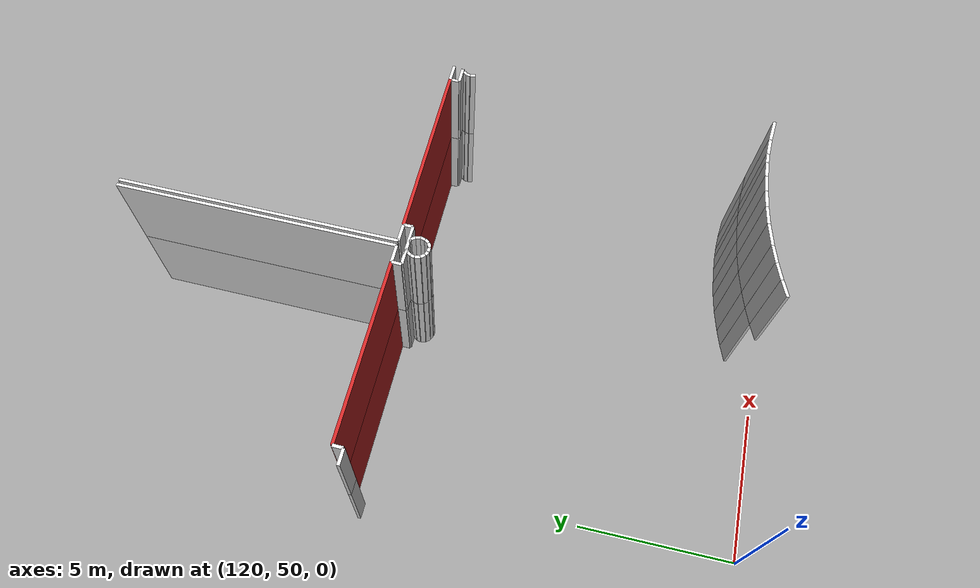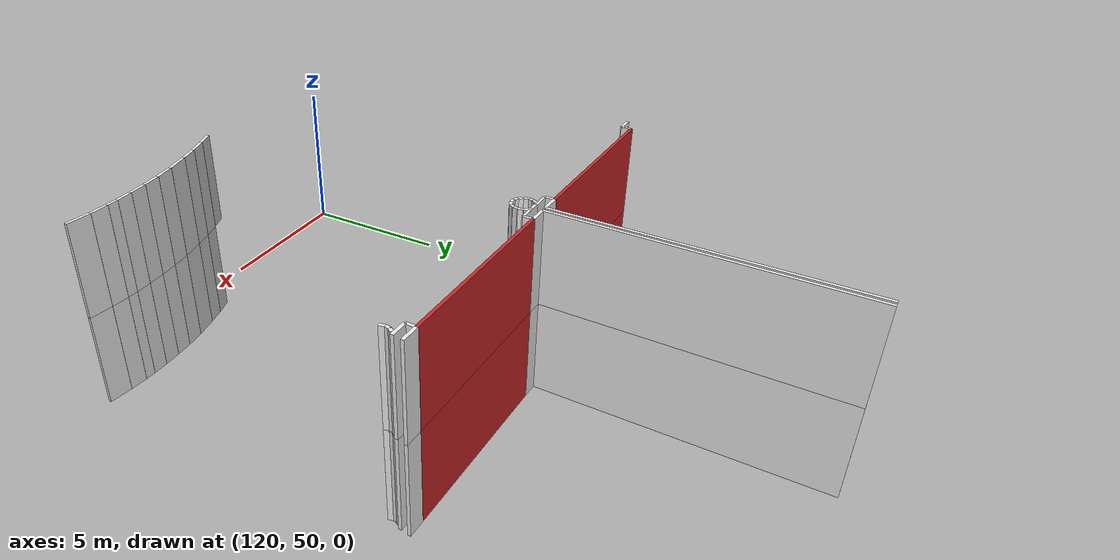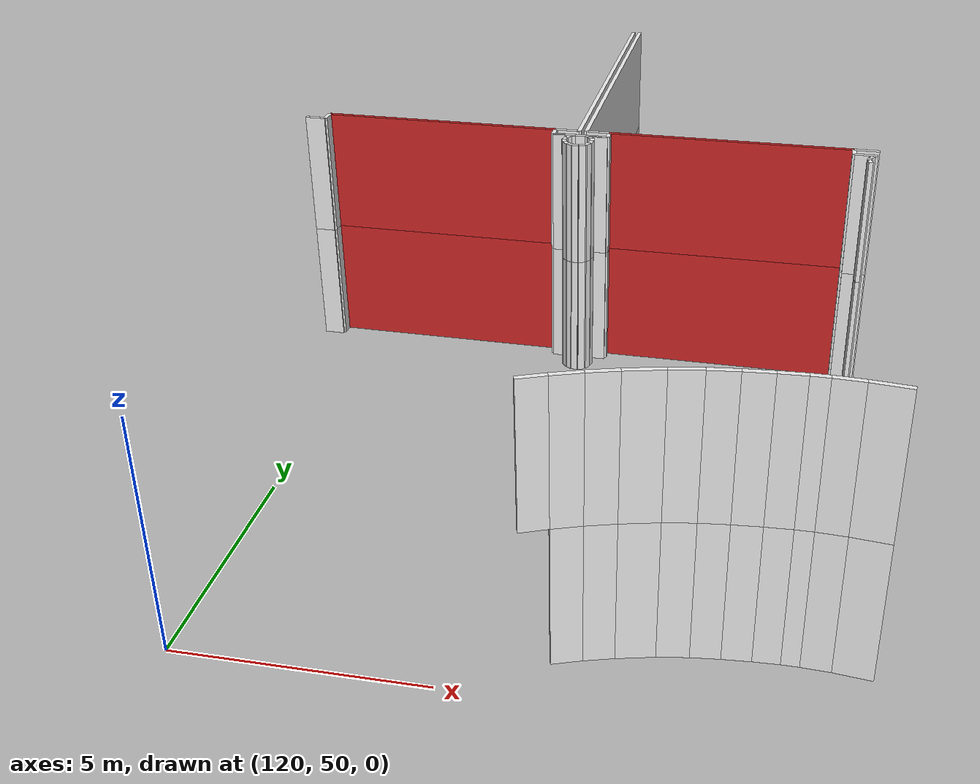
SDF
<sdf version="1.6">
 <world name="default">
  <model name="wall_122.0_62.2_1.5">
   <static>true</static>
   <pose>122.01499999998487 62.15500000002794 1.5 0 0 -0.015760516353173326</pose>
   <link name="link">
    <visual name="visual">
     <geometry><box><size>5.710709237940267 0.1 3</size></box></geometry>
     <material>
      <script><uri>file://media/materials/scripts/gazebo.material</uri><name>Gazebo/Red</name></script>
     </material>
    </visual>
    <collision name="collision"><geometry><box><size>5.710709237940267 0.1 3</size></box></geometry></collision>
   </link>
  </model>
  <model name="wall_129.0_62.0_1.5">
   <static>true</static>
   <pose>129.01999999998952 62.049999999813735 1.5 0 0 -0.014034166280132265</pose>
   <link name="link">
    <visual name="visual">
     <geometry><box><size>5.7005613758773475 0.1 3</size></box></geometry>
     <material>
      <script><uri>file://media/materials/scripts/gazebo.material</uri><name>Gazebo/Red</name></script>
     </material>
    </visual>
    <collision name="collision"><geometry><box><size>5.7005613758773475 0.1 3</size></box></geometry></collision>
   </link>
  </model>
  <model name="wall_122.0_62.2_4.5">
   <static>true</static>
   <pose>122.01499999998487 62.15500000002794 4.5 0 0 -0.015760516353173326</pose>
   <link name="link">
    <visual name="visual">
     <geometry><box><size>5.710709237940267 0.1 3</size></box></geometry>
     <material>
      <script><uri>file://media/materials/scripts/gazebo.material</uri><name>Gazebo/Red</name></script>
     </material>
    </visual>
    <collision name="collision"><geometry><box><size>5.710709237940267 0.1 3</size></box></geometry></collision>
   </link>
  </model>
  <model name="wall_129.0_62.0_4.5">
   <static>true</static>
   <pose>129.01999999998952 62.049999999813735 4.5 0 0 -0.014034166280132265</pose>
   <link name="link">
    <visual name="visual">
     <geometry><box><size>5.7005613758773475 0.1 3</size></box></geometry>
     <material>
      <script><uri>file://media/materials/scripts/gazebo.material</uri><name>Gazebo/Red</name></script>
     </material>
    </visual>
    <collision name="collision"><geometry><box><size>5.7005613758773475 0.1 3</size></box></geometry></collision>
   </link>
  </model>
  <model name="wall_125.5_66.5_1.5">
   <static>true</static>
   <pose>125.5 66.53500000014901 1.5 0 0 1.5572684034898048</pose>
   <link name="link">
    <visual name="visual">
     <geometry><box><size>8.870811687888628 0.1 3</size></box></geometry>
     <material>
      <script><uri>file://media/materials/scripts/gazebo.material</uri><name>Gazebo/White</name></script>
     </material>
    </visual>
    <collision name="collision"><geometry><box><size>8.870811687888628 0.1 3</size></box></geometry></collision>
   </link>
  </model>
  <model name="wall_125.2_62.1_1.5">
   <static>true</static>
   <pose>125.15499999999884 62.10499999998137 1.5 0 0 -0.017542059665172402</pose>
   <link name="link">
    <visual name="visual">
     <geometry><box><size>0.5700877125526321 0.1 3</size></box></geometry>
     <material>
      <script><uri>file://media/materials/scripts/gazebo.material</uri><name>Gazebo/White</name></script>
     </material>
    </visual>
    <collision name="collision"><geometry><box><size>0.5700877125526321 0.1 3</size></box></geometry></collision>
   </link>
  </model>
  <model name="wall_125.7_66.5_1.5">
   <static>true</static>
   <pose>125.67499999998836 66.53500000014901 1.5 0 0 -1.5854514218446472</pose>
   <link name="link">
    <visual name="visual">
     <geometry><box><size>8.87095259833936 0.1 3</size></box></geometry>
     <material>
      <script><uri>file://media/materials/scripts/gazebo.material</uri><name>Gazebo/White</name></script>
     </material>
    </visual>
    <collision name="collision"><geometry><box><size>8.87095259833936 0.1 3</size></box></geometry></collision>
   </link>
  </model>
  <model name="wall_125.9_62.1_1.5">
   <static>true</static>
   <pose>125.88999999998487 62.09499999997206 1.5 0 0 -0.017855245571888664</pose>
   <link name="link">
    <visual name="visual">
     <geometry><box><size>0.5600892785996132 0.1 3</size></box></geometry>
     <material>
      <script><uri>file://media/materials/scripts/gazebo.material</uri><name>Gazebo/White</name></script>
     </material>
    </visual>
    <collision name="collision"><geometry><box><size>0.5600892785996132 0.1 3</size></box></geometry></collision>
   </link>
  </model>
  <model name="wall_132.1_62.0_1.5">
   <static>true</static>
   <pose>132.14999999999418 62.00499999988824 1.5 0 0 -0.017855244740615724</pose>
   <link name="link">
    <visual name="visual">
     <geometry><box><size>0.5600892785912992 0.1 3</size></box></geometry>
     <material>
      <script><uri>file://media/materials/scripts/gazebo.material</uri><name>Gazebo/White</name></script>
     </material>
    </visual>
    <collision name="collision"><geometry><box><size>0.5600892785912992 0.1 3</size></box></geometry></collision>
   </link>
  </model>
  <model name="wall_132.2_51.6_1.5">
   <static>true</static>
   <pose>132.19500000000698 51.640000000130385 1.5 0 0 3.0324391905773007</pose>
   <link name="link">
    <visual name="visual">
     <geometry><box><size>0.7343704786990871 0.1 3</size></box></geometry>
     <material>
      <script><uri>file://media/materials/scripts/gazebo.material</uri><name>Gazebo/White</name></script>
     </material>
    </visual>
    <collision name="collision"><geometry><box><size>0.7343704786990871 0.1 3</size></box></geometry></collision>
   </link>
  </model>
  <model name="wall_131.6_51.7_1.5">
   <static>true</static>
   <pose>131.55000000001746 51.69500000006519 1.5 0 0 3.0880723854950856</pose>
   <link name="link">
    <visual name="visual">
     <geometry><box><size>0.5608029956991125 0.1 3</size></box></geometry>
     <material>
      <script><uri>file://media/materials/scripts/gazebo.material</uri><name>Gazebo/White</name></script>
     </material>
    </visual>
    <collision name="collision"><geometry><box><size>0.5608029956991125 0.1 3</size></box></geometry></collision>
   </link>
  </model>
  <model name="wall_131.1_51.7_1.5">
   <static>true</static>
   <pose>131.10000000000582 51.70999999996275 1.5 0 0 3.141592653589793</pose>
   <link name="link">
    <visual name="visual">
     <geometry><box><size>0.34000000002561137 0.1 3</size></box></geometry>
     <material>
      <script><uri>file://media/materials/scripts/gazebo.material</uri><name>Gazebo/White</name></script>
     </material>
    </visual>
    <collision name="collision"><geometry><box><size>0.34000000002561137 0.1 3</size></box></geometry></collision>
   </link>
  </model>
  <model name="wall_130.7_51.7_1.5">
   <static>true</static>
   <pose>130.67499999998836 51.699999999953434 1.5 0 0 -3.102397051626987</pose>
   <link name="link">
    <visual name="visual">
     <geometry><box><size>0.5103920062170298 0.1 3</size></box></geometry>
     <material>
      <script><uri>file://media/materials/scripts/gazebo.material</uri><name>Gazebo/White</name></script>
     </material>
    </visual>
    <collision name="collision"><geometry><box><size>0.5103920062170298 0.1 3</size></box></geometry></collision>
   </link>
  </model>
  <model name="wall_130.1_51.7_1.5">
   <static>true</static>
   <pose>130.14499999998952 51.669999999925494 1.5 0 0 -3.068993199790391</pose>
   <link name="link">
    <visual name="visual">
     <geometry><box><size>0.5514526271495808 0.1 3</size></box></geometry>
     <material>
      <script><uri>file://media/materials/scripts/gazebo.material</uri><name>Gazebo/White</name></script>
     </material>
    </visual>
    <collision name="collision"><geometry><box><size>0.5514526271495808 0.1 3</size></box></geometry></collision>
   </link>
  </model>
  <model name="wall_129.6_51.6_1.5">
   <static>true</static>
   <pose>129.5899999999965 51.61999999987893 1.5 0 0 -3.0348569808415653</pose>
   <link name="link">
    <visual name="visual">
     <geometry><box><size>0.5632051136167868 0.1 3</size></box></geometry>
     <material>
      <script><uri>file://media/materials/scripts/gazebo.material</uri><name>Gazebo/White</name></script>
     </material>
    </visual>
    <collision name="collision"><geometry><box><size>0.5632051136167868 0.1 3</size></box></geometry></collision>
   </link>
  </model>
  <model name="wall_129.0_51.5_1.5">
   <static>true</static>
   <pose>129.0100000000093 51.54000000003725 1.5 0 0 -2.9764439767729747</pose>
   <link name="link">
    <visual name="visual">
     <geometry><box><size>0.6082762529456124 0.1 3</size></box></geometry>
     <material>
      <script><uri>file://media/materials/scripts/gazebo.material</uri><name>Gazebo/White</name></script>
     </material>
    </visual>
    <collision name="collision"><geometry><box><size>0.6082762529456124 0.1 3</size></box></geometry></collision>
   </link>
  </model>
  <model name="wall_128.4_51.4_1.5">
   <static>true</static>
   <pose>128.35000000000582 51.40500000002794 1.5 0 0 -2.909727992235222</pose>
   <link name="link">
    <visual name="visual">
     <geometry><box><size>0.7397972696466099 0.1 3</size></box></geometry>
     <material>
      <script><uri>file://media/materials/scripts/gazebo.material</uri><name>Gazebo/White</name></script>
     </material>
    </visual>
    <collision name="collision"><geometry><box><size>0.7397972696466099 0.1 3</size></box></geometry></collision>
   </link>
  </model>
  <model name="wall_127.7_51.2_1.5">
   <static>true</static>
   <pose>127.70999999999185 51.23999999999069 1.5 0 0 -2.863292995106354</pose>
   <link name="link">
    <visual name="visual">
     <geometry><box><size>0.5824087910532124 0.1 3</size></box></geometry>
     <material>
      <script><uri>file://media/materials/scripts/gazebo.material</uri><name>Gazebo/White</name></script>
     </material>
    </visual>
    <collision name="collision"><geometry><box><size>0.5824087910532124 0.1 3</size></box></geometry></collision>
   </link>
  </model>
  <model name="wall_127.2_51.1_1.5">
   <static>true</static>
   <pose>127.15499999999884 51.06500000017695 1.5 0 0 -2.8089729621001154</pose>
   <link name="link">
    <visual name="visual">
     <geometry><box><size>0.581893461009797 0.1 3</size></box></geometry>
     <material>
      <script><uri>file://media/materials/scripts/gazebo.material</uri><name>Gazebo/White</name></script>
     </material>
    </visual>
    <collision name="collision"><geometry><box><size>0.581893461009797 0.1 3</size></box></geometry></collision>
   </link>
  </model>
  <model name="wall_118.9_61.9_1.5">
   <static>true</static>
   <pose>118.90499999999884 61.88500000000931 1.5 0 0 -0.020405331178467944</pose>
   <link name="link">
    <visual name="visual">
     <geometry><box><size>0.4901020302475388 0.1 3</size></box></geometry>
     <material>
      <script><uri>file://media/materials/scripts/gazebo.material</uri><name>Gazebo/White</name></script>
     </material>
    </visual>
    <collision name="collision"><geometry><box><size>0.4901020302475388 0.1 3</size></box></geometry></collision>
   </link>
  </model>
  <model name="wall_119.2_62.0_1.5">
   <static>true</static>
   <pose>119.15499999999884 62.04000000003725 1.5 0 0 1.5395564935463497</pose>
   <link name="link">
    <visual name="visual">
     <geometry><box><size>0.320156212167993 0.1 3</size></box></geometry>
     <material>
      <script><uri>file://media/materials/scripts/gazebo.material</uri><name>Gazebo/White</name></script>
     </material>
    </visual>
    <collision name="collision"><geometry><box><size>0.320156212167993 0.1 3</size></box></geometry></collision>
   </link>
  </model>
  <model name="wall_124.9_62.0_1.5">
   <static>true</static>
   <pose>124.86499999999069 61.954999999841675 1.5 0 0 -1.6030432092543534</pose>
   <link name="link">
    <visual name="visual">
     <geometry><box><size>0.310161248441567 0.1 3</size></box></geometry>
     <material>
      <script><uri>file://media/materials/scripts/gazebo.material</uri><name>Gazebo/White</name></script>
     </material>
    </visual>
    <collision name="collision"><geometry><box><size>0.310161248441567 0.1 3</size></box></geometry></collision>
   </link>
  </model>
  <model name="wall_125.1_61.8_1.5">
   <static>true</static>
   <pose>125.13000000000466 61.799999999813735 1.5 0 0 0.0</pose>
   <link name="link">
    <visual name="visual">
     <geometry><box><size>0.5400000000372529 0.1 3</size></box></geometry>
     <material>
      <script><uri>file://media/materials/scripts/gazebo.material</uri><name>Gazebo/White</name></script>
     </material>
    </visual>
    <collision name="collision"><geometry><box><size>0.5400000000372529 0.1 3</size></box></geometry></collision>
   </link>
  </model>
  <model name="wall_125.3_61.8_1.5">
   <static>true</static>
   <pose>125.34500000000116 61.764999999897555 1.5 0 0 -2.5748634373331596</pose>
   <link name="link">
    <visual name="visual">
     <geometry><box><size>0.13038404805137394 0.1 3</size></box></geometry>
     <material>
      <script><uri>file://media/materials/scripts/gazebo.material</uri><name>Gazebo/White</name></script>
     </material>
    </visual>
    <collision name="collision"><geometry><box><size>0.13038404805137394 0.1 3</size></box></geometry></collision>
   </link>
  </model>
  <model name="wall_125.2_61.7_1.5">
   <static>true</static>
   <pose>125.25 61.675000000046566 1.5 0 0 -2.1995926135249655</pose>
   <link name="link">
    <visual name="visual">
     <geometry><box><size>0.13601470495725726 0.1 3</size></box></geometry>
     <material>
      <script><uri>file://media/materials/scripts/gazebo.material</uri><name>Gazebo/White</name></script>
     </material>
    </visual>
    <collision name="collision"><geometry><box><size>0.13601470495725726 0.1 3</size></box></geometry></collision>
   </link>
  </model>
  <model name="wall_125.2_61.6_1.5">
   <static>true</static>
   <pose>125.19500000000698 61.55500000016764 1.5 0 0 -1.7975951752411936</pose>
   <link name="link">
    <visual name="visual">
     <geometry><box><size>0.13341664053864913 0.1 3</size></box></geometry>
     <material>
      <script><uri>file://media/materials/scripts/gazebo.material</uri><name>Gazebo/White</name></script>
     </material>
    </visual>
    <collision name="collision"><geometry><box><size>0.13341664053864913 0.1 3</size></box></geometry></collision>
   </link>
  </model>
  <model name="wall_125.2_61.4_1.5">
   <static>true</static>
   <pose>125.19999999998254 61.41000000014901 1.5 0 0 -1.3258176640104304</pose>
   <link name="link">
    <visual name="visual">
     <geometry><box><size>0.16492422516418664 0.1 3</size></box></geometry>
     <material>
      <script><uri>file://media/materials/scripts/gazebo.material</uri><name>Gazebo/White</name></script>
     </material>
    </visual>
    <collision name="collision"><geometry><box><size>0.16492422516418664 0.1 3</size></box></geometry></collision>
   </link>
  </model>
  <model name="wall_125.3_61.3_1.5">
   <static>true</static>
   <pose>125.26999999998952 61.27000000001863 1.5 0 0 -0.8760580508844606</pose>
   <link name="link">
    <visual name="visual">
     <geometry><box><size>0.15620499362634668 0.1 3</size></box></geometry>
     <material>
      <script><uri>file://media/materials/scripts/gazebo.material</uri><name>Gazebo/White</name></script>
     </material>
    </visual>
    <collision name="collision"><geometry><box><size>0.15620499362634668 0.1 3</size></box></geometry></collision>
   </link>
  </model>
  <model name="wall_125.4_61.2_1.5">
   <static>true</static>
   <pose>125.38000000000466 61.17999999993481 1.5 0 0 -0.4636476093888572</pose>
   <link name="link">
    <visual name="visual">
     <geometry><box><size>0.1341640786708124 0.1 3</size></box></geometry>
     <material>
      <script><uri>file://media/materials/scripts/gazebo.material</uri><name>Gazebo/White</name></script>
     </material>
    </visual>
    <collision name="collision"><geometry><box><size>0.1341640786708124 0.1 3</size></box></geometry></collision>
   </link>
  </model>
  <model name="wall_125.5_61.1_1.5">
   <static>true</static>
   <pose>125.51500000001397 61.14500000001863 1.5 0 0 -0.06656816228199888</pose>
   <link name="link">
    <visual name="visual">
     <geometry><box><size>0.15033296379209243 0.1 3</size></box></geometry>
     <material>
      <script><uri>file://media/materials/scripts/gazebo.material</uri><name>Gazebo/White</name></script>
     </material>
    </visual>
    <collision name="collision"><geometry><box><size>0.15033296379209243 0.1 3</size></box></geometry></collision>
   </link>
  </model>
  <model name="wall_125.7_61.2_1.5">
   <static>true</static>
   <pose>125.66500000000815 61.170000000158325 1.5 0 0 0.380506377513797</pose>
   <link name="link">
    <visual name="visual">
     <geometry><box><size>0.16155494420236152 0.1 3</size></box></geometry>
     <material>
      <script><uri>file://media/materials/scripts/gazebo.material</uri><name>Gazebo/White</name></script>
     </material>
    </visual>
    <collision name="collision"><geometry><box><size>0.16155494420236152 0.1 3</size></box></geometry></collision>
   </link>
  </model>
  <model name="wall_125.8_61.3_1.5">
   <static>true</static>
   <pose>125.77999999999884 61.265000000130385 1.5 0 0 1.019141343791695</pose>
   <link name="link">
    <visual name="visual">
     <geometry><box><size>0.15264337513809906 0.1 3</size></box></geometry>
     <material>
      <script><uri>file://media/materials/scripts/gazebo.material</uri><name>Gazebo/White</name></script>
     </material>
    </visual>
    <collision name="collision"><geometry><box><size>0.15264337513809906 0.1 3</size></box></geometry></collision>
   </link>
  </model>
  <model name="wall_125.8_61.4_1.5">
   <static>true</static>
   <pose>125.83999999999651 61.40500000002794 1.5 0 0 1.310193935023403</pose>
   <link name="link">
    <visual name="visual">
     <geometry><box><size>0.15524174686721334 0.1 3</size></box></geometry>
     <material>
      <script><uri>file://media/materials/scripts/gazebo.material</uri><name>Gazebo/White</name></script>
     </material>
    </visual>
    <collision name="collision"><geometry><box><size>0.15524174686721334 0.1 3</size></box></geometry></collision>
   </link>
  </model>
  <model name="wall_125.8_61.6_1.5">
   <static>true</static>
   <pose>125.83999999999651 61.55499999993481 1.5 0 0 1.8313987185663902</pose>
   <link name="link">
    <visual name="visual">
     <geometry><box><size>0.15524174686721334 0.1 3</size></box></geometry>
     <material>
      <script><uri>file://media/materials/scripts/gazebo.material</uri><name>Gazebo/White</name></script>
     </material>
    </visual>
    <collision name="collision"><geometry><box><size>0.15524174686721334 0.1 3</size></box></geometry></collision>
   </link>
  </model>
  <model name="wall_125.8_61.7_1.5">
   <static>true</static>
   <pose>125.77499999999418 61.69499999983236 1.5 0 0 2.176340990935377</pose>
   <link name="link">
    <visual name="visual">
     <geometry><box><size>0.15811388293111006 0.1 3</size></box></geometry>
     <material>
      <script><uri>file://media/materials/scripts/gazebo.material</uri><name>Gazebo/White</name></script>
     </material>
    </visual>
    <collision name="collision"><geometry><box><size>0.15811388293111006 0.1 3</size></box></geometry></collision>
   </link>
  </model>
  <model name="wall_125.7_61.8_1.5">
   <static>true</static>
   <pose>125.69000000000233 61.77499999990687 1.5 0 0 2.782821980289233</pose>
   <link name="link">
    <visual name="visual">
     <geometry><box><size>0.08544003750549678 0.1 3</size></box></geometry>
     <material>
      <script><uri>file://media/materials/scripts/gazebo.material</uri><name>Gazebo/White</name></script>
     </material>
    </visual>
    <collision name="collision"><geometry><box><size>0.08544003750549678 0.1 3</size></box></geometry></collision>
   </link>
  </model>
  <model name="wall_125.9_61.8_1.5">
   <static>true</static>
   <pose>125.91000000000349 61.79000000003725 1.5 0 0 0.0</pose>
   <link name="link">
    <visual name="visual">
     <geometry><box><size>0.5199999999604188 0.1 3</size></box></geometry>
     <material>
      <script><uri>file://media/materials/scripts/gazebo.material</uri><name>Gazebo/White</name></script>
     </material>
    </visual>
    <collision name="collision"><geometry><box><size>0.5199999999604188 0.1 3</size></box></geometry></collision>
   </link>
  </model>
  <model name="wall_126.2_61.9_1.5">
   <static>true</static>
   <pose>126.1699999999837 61.93999999994412 1.5 0 0 1.5707963267948966</pose>
   <link name="link">
    <visual name="visual">
     <geometry><box><size>0.2999999998137355 0.1 3</size></box></geometry>
     <material>
      <script><uri>file://media/materials/scripts/gazebo.material</uri><name>Gazebo/White</name></script>
     </material>
    </visual>
    <collision name="collision"><geometry><box><size>0.2999999998137355 0.1 3</size></box></geometry></collision>
   </link>
  </model>
  <model name="wall_131.9_61.9_1.5">
   <static>true</static>
   <pose>131.8649999999907 61.859999999869615 1.5 0 0 -1.6041173227248264</pose>
   <link name="link">
    <visual name="visual">
     <geometry><box><size>0.30016662021022184 0.1 3</size></box></geometry>
     <material>
      <script><uri>file://media/materials/scripts/gazebo.material</uri><name>Gazebo/White</name></script>
     </material>
    </visual>
    <collision name="collision"><geometry><box><size>0.30016662021022184 0.1 3</size></box></geometry></collision>
   </link>
  </model>
  <model name="wall_132.1_61.7_1.5">
   <static>true</static>
   <pose>132.11999999999534 61.705000000074506 1.5 0 0 -0.01922839866933633</pose>
   <link name="link">
    <visual name="visual">
     <geometry><box><size>0.5200961449721592 0.1 3</size></box></geometry>
     <material>
      <script><uri>file://media/materials/scripts/gazebo.material</uri><name>Gazebo/White</name></script>
     </material>
    </visual>
    <collision name="collision"><geometry><box><size>0.5200961449721592 0.1 3</size></box></geometry></collision>
   </link>
  </model>
  <model name="wall_132.2_61.6_1.5">
   <static>true</static>
   <pose>132.2400000000198 61.58499999996275 1.5 0 0 -2.199592611857395</pose>
   <link name="link">
    <visual name="visual">
     <geometry><box><size>0.13601470536809043 0.1 3</size></box></geometry>
     <material>
      <script><uri>file://media/materials/scripts/gazebo.material</uri><name>Gazebo/White</name></script>
     </material>
    </visual>
    <collision name="collision"><geometry><box><size>0.13601470536809043 0.1 3</size></box></geometry></collision>
   </link>
  </model>
  <model name="wall_132.2_61.5_1.5">
   <static>true</static>
   <pose>132.18499999999767 61.46499999985099 1.5 0 0 -1.7975951752411936</pose>
   <link name="link">
    <visual name="visual">
     <geometry><box><size>0.13341664053864913 0.1 3</size></box></geometry>
     <material>
      <script><uri>file://media/materials/scripts/gazebo.material</uri><name>Gazebo/White</name></script>
     </material>
    </visual>
    <collision name="collision"><geometry><box><size>0.13341664053864913 0.1 3</size></box></geometry></collision>
   </link>
  </model>
  <model name="wall_132.2_61.3_1.5">
   <static>true</static>
   <pose>132.19000000000233 61.32000000006519 1.5 0 0 -1.3258176629832366</pose>
   <link name="link">
    <visual name="visual">
     <geometry><box><size>0.16492422472654628 0.1 3</size></box></geometry>
     <material>
      <script><uri>file://media/materials/scripts/gazebo.material</uri><name>Gazebo/White</name></script>
     </material>
    </visual>
    <collision name="collision"><geometry><box><size>0.16492422472654628 0.1 3</size></box></geometry></collision>
   </link>
  </model>
  <model name="wall_125.5_61.8_1.5">
   <static>true</static>
   <pose>125.51499999998487 61.794999999925494 1.5 0 0 -0.007633439346892596</pose>
   <link name="link">
    <visual name="visual">
     <geometry><box><size>1.3100381673788857 0.1 3</size></box></geometry>
     <material>
      <script><uri>file://media/materials/scripts/gazebo.material</uri><name>Gazebo/White</name></script>
     </material>
    </visual>
    <collision name="collision"><geometry><box><size>1.3100381673788857 0.1 3</size></box></geometry></collision>
   </link>
  </model>
  <model name="wall_125.5_66.5_4.5">
   <static>true</static>
   <pose>125.5 66.53500000014901 4.5 0 0 1.5572684034898048</pose>
   <link name="link">
    <visual name="visual">
     <geometry><box><size>8.870811687888628 0.1 3</size></box></geometry>
     <material>
      <script><uri>file://media/materials/scripts/gazebo.material</uri><name>Gazebo/White</name></script>
     </material>
    </visual>
    <collision name="collision"><geometry><box><size>8.870811687888628 0.1 3</size></box></geometry></collision>
   </link>
  </model>
  <model name="wall_125.2_62.1_4.5">
   <static>true</static>
   <pose>125.15499999999884 62.10499999998137 4.5 0 0 -0.017542059665172402</pose>
   <link name="link">
    <visual name="visual">
     <geometry><box><size>0.5700877125526321 0.1 3</size></box></geometry>
     <material>
      <script><uri>file://media/materials/scripts/gazebo.material</uri><name>Gazebo/White</name></script>
     </material>
    </visual>
    <collision name="collision"><geometry><box><size>0.5700877125526321 0.1 3</size></box></geometry></collision>
   </link>
  </model>
  <model name="wall_125.7_66.5_4.5">
   <static>true</static>
   <pose>125.67499999998836 66.53500000014901 4.5 0 0 -1.5854514218446472</pose>
   <link name="link">
    <visual name="visual">
     <geometry><box><size>8.87095259833936 0.1 3</size></box></geometry>
     <material>
      <script><uri>file://media/materials/scripts/gazebo.material</uri><name>Gazebo/White</name></script>
     </material>
    </visual>
    <collision name="collision"><geometry><box><size>8.87095259833936 0.1 3</size></box></geometry></collision>
   </link>
  </model>
  <model name="wall_125.9_62.1_4.5">
   <static>true</static>
   <pose>125.88999999998487 62.09499999997206 4.5 0 0 -0.017855245571888664</pose>
   <link name="link">
    <visual name="visual">
     <geometry><box><size>0.5600892785996132 0.1 3</size></box></geometry>
     <material>
      <script><uri>file://media/materials/scripts/gazebo.material</uri><name>Gazebo/White</name></script>
     </material>
    </visual>
    <collision name="collision"><geometry><box><size>0.5600892785996132 0.1 3</size></box></geometry></collision>
   </link>
  </model>
  <model name="wall_132.1_62.0_4.5">
   <static>true</static>
   <pose>132.14999999999418 62.00499999988824 4.5 0 0 -0.017855244740615724</pose>
   <link name="link">
    <visual name="visual">
     <geometry><box><size>0.5600892785912992 0.1 3</size></box></geometry>
     <material>
      <script><uri>file://media/materials/scripts/gazebo.material</uri><name>Gazebo/White</name></script>
     </material>
    </visual>
    <collision name="collision"><geometry><box><size>0.5600892785912992 0.1 3</size></box></geometry></collision>
   </link>
  </model>
  <model name="wall_132.2_51.6_4.5">
   <static>true</static>
   <pose>132.19500000000698 51.640000000130385 4.5 0 0 3.0324391905773007</pose>
   <link name="link">
    <visual name="visual">
     <geometry><box><size>0.7343704786990871 0.1 3</size></box></geometry>
     <material>
      <script><uri>file://media/materials/scripts/gazebo.material</uri><name>Gazebo/White</name></script>
     </material>
    </visual>
    <collision name="collision"><geometry><box><size>0.7343704786990871 0.1 3</size></box></geometry></collision>
   </link>
  </model>
  <model name="wall_131.6_51.7_4.5">
   <static>true</static>
   <pose>131.55000000001746 51.69500000006519 4.5 0 0 3.0880723854950856</pose>
   <link name="link">
    <visual name="visual">
     <geometry><box><size>0.5608029956991125 0.1 3</size></box></geometry>
     <material>
      <script><uri>file://media/materials/scripts/gazebo.material</uri><name>Gazebo/White</name></script>
     </material>
    </visual>
    <collision name="collision"><geometry><box><size>0.5608029956991125 0.1 3</size></box></geometry></collision>
   </link>
  </model>
  <model name="wall_131.1_51.7_4.5">
   <static>true</static>
   <pose>131.10000000000582 51.70999999996275 4.5 0 0 3.141592653589793</pose>
   <link name="link">
    <visual name="visual">
     <geometry><box><size>0.34000000002561137 0.1 3</size></box></geometry>
     <material>
      <script><uri>file://media/materials/scripts/gazebo.material</uri><name>Gazebo/White</name></script>
     </material>
    </visual>
    <collision name="collision"><geometry><box><size>0.34000000002561137 0.1 3</size></box></geometry></collision>
   </link>
  </model>
  <model name="wall_130.7_51.7_4.5">
   <static>true</static>
   <pose>130.67499999998836 51.699999999953434 4.5 0 0 -3.102397051626987</pose>
   <link name="link">
    <visual name="visual">
     <geometry><box><size>0.5103920062170298 0.1 3</size></box></geometry>
     <material>
      <script><uri>file://media/materials/scripts/gazebo.material</uri><name>Gazebo/White</name></script>
     </material>
    </visual>
    <collision name="collision"><geometry><box><size>0.5103920062170298 0.1 3</size></box></geometry></collision>
   </link>
  </model>
  <model name="wall_130.1_51.7_4.5">
   <static>true</static>
   <pose>130.14499999998952 51.669999999925494 4.5 0 0 -3.068993199790391</pose>
   <link name="link">
    <visual name="visual">
     <geometry><box><size>0.5514526271495808 0.1 3</size></box></geometry>
     <material>
      <script><uri>file://media/materials/scripts/gazebo.material</uri><name>Gazebo/White</name></script>
     </material>
    </visual>
    <collision name="collision"><geometry><box><size>0.5514526271495808 0.1 3</size></box></geometry></collision>
   </link>
  </model>
  <model name="wall_129.6_51.6_4.5">
   <static>true</static>
   <pose>129.5899999999965 51.61999999987893 4.5 0 0 -3.0348569808415653</pose>
   <link name="link">
    <visual name="visual">
     <geometry><box><size>0.5632051136167868 0.1 3</size></box></geometry>
     <material>
      <script><uri>file://media/materials/scripts/gazebo.material</uri><name>Gazebo/White</name></script>
     </material>
    </visual>
    <collision name="collision"><geometry><box><size>0.5632051136167868 0.1 3</size></box></geometry></collision>
   </link>
  </model>
  <model name="wall_129.0_51.5_4.5">
   <static>true</static>
   <pose>129.0100000000093 51.54000000003725 4.5 0 0 -2.9764439767729747</pose>
   <link name="link">
    <visual name="visual">
     <geometry><box><size>0.6082762529456124 0.1 3</size></box></geometry>
     <material>
      <script><uri>file://media/materials/scripts/gazebo.material</uri><name>Gazebo/White</name></script>
     </material>
    </visual>
    <collision name="collision"><geometry><box><size>0.6082762529456124 0.1 3</size></box></geometry></collision>
   </link>
  </model>
  <model name="wall_128.4_51.4_4.5">
   <static>true</static>
   <pose>128.35000000000582 51.40500000002794 4.5 0 0 -2.909727992235222</pose>
   <link name="link">
    <visual name="visual">
     <geometry><box><size>0.7397972696466099 0.1 3</size></box></geometry>
     <material>
      <script><uri>file://media/materials/scripts/gazebo.material</uri><name>Gazebo/White</name></script>
     </material>
    </visual>
    <collision name="collision"><geometry><box><size>0.7397972696466099 0.1 3</size></box></geometry></collision>
   </link>
  </model>
  <model name="wall_127.7_51.2_4.5">
   <static>true</static>
   <pose>127.70999999999185 51.23999999999069 4.5 0 0 -2.863292995106354</pose>
   <link name="link">
    <visual name="visual">
     <geometry><box><size>0.5824087910532124 0.1 3</size></box></geometry>
     <material>
      <script><uri>file://media/materials/scripts/gazebo.material</uri><name>Gazebo/White</name></script>
     </material>
    </visual>
    <collision name="collision"><geometry><box><size>0.5824087910532124 0.1 3</size></box></geometry></collision>
   </link>
  </model>
  <model name="wall_127.2_51.1_4.5">
   <static>true</static>
   <pose>127.15499999999884 51.06500000017695 4.5 0 0 -2.8089729621001154</pose>
   <link name="link">
    <visual name="visual">
     <geometry><box><size>0.581893461009797 0.1 3</size></box></geometry>
     <material>
      <script><uri>file://media/materials/scripts/gazebo.material</uri><name>Gazebo/White</name></script>
     </material>
    </visual>
    <collision name="collision"><geometry><box><size>0.581893461009797 0.1 3</size></box></geometry></collision>
   </link>
  </model>
  <model name="wall_126.6_50.9_4.5">
   <static>true</static>
   <pose>126.625 50.87000000011176 4.5 0 0 -2.7678658333139023</pose>
   <link name="link">
    <visual name="visual">
     <geometry><box><size>0.5478138370687667 0.1 3</size></box></geometry>
     <material>
      <script><uri>file://media/materials/scripts/gazebo.material</uri><name>Gazebo/White</name></script>
     </material>
    </visual>
    <collision name="collision"><geometry><box><size>0.5478138370687667 0.1 3</size></box></geometry></collision>
   </link>
  </model>
  <model name="wall_118.9_61.9_4.5">
   <static>true</static>
   <pose>118.90499999999884 61.88500000000931 4.5 0 0 -0.020405331178467944</pose>
   <link name="link">
    <visual name="visual">
     <geometry><box><size>0.4901020302475388 0.1 3</size></box></geometry>
     <material>
      <script><uri>file://media/materials/scripts/gazebo.material</uri><name>Gazebo/White</name></script>
     </material>
    </visual>
    <collision name="collision"><geometry><box><size>0.4901020302475388 0.1 3</size></box></geometry></collision>
   </link>
  </model>
  <model name="wall_119.2_62.0_4.5">
   <static>true</static>
   <pose>119.15499999999884 62.04000000003725 4.5 0 0 1.5395564935463497</pose>
   <link name="link">
    <visual name="visual">
     <geometry><box><size>0.320156212167993 0.1 3</size></box></geometry>
     <material>
      <script><uri>file://media/materials/scripts/gazebo.material</uri><name>Gazebo/White</name></script>
     </material>
    </visual>
    <collision name="collision"><geometry><box><size>0.320156212167993 0.1 3</size></box></geometry></collision>
   </link>
  </model>
  <model name="wall_124.9_62.0_4.5">
   <static>true</static>
   <pose>124.86499999999069 61.954999999841675 4.5 0 0 -1.6030432092543534</pose>
   <link name="link">
    <visual name="visual">
     <geometry><box><size>0.310161248441567 0.1 3</size></box></geometry>
     <material>
      <script><uri>file://media/materials/scripts/gazebo.material</uri><name>Gazebo/White</name></script>
     </material>
    </visual>
    <collision name="collision"><geometry><box><size>0.310161248441567 0.1 3</size></box></geometry></collision>
   </link>
  </model>
  <model name="wall_125.1_61.8_4.5">
   <static>true</static>
   <pose>125.13000000000466 61.799999999813735 4.5 0 0 0.0</pose>
   <link name="link">
    <visual name="visual">
     <geometry><box><size>0.5400000000372529 0.1 3</size></box></geometry>
     <material>
      <script><uri>file://media/materials/scripts/gazebo.material</uri><name>Gazebo/White</name></script>
     </material>
    </visual>
    <collision name="collision"><geometry><box><size>0.5400000000372529 0.1 3</size></box></geometry></collision>
   </link>
  </model>
  <model name="wall_125.3_61.8_4.5">
   <static>true</static>
   <pose>125.34500000000116 61.764999999897555 4.5 0 0 -2.5748634373331596</pose>
   <link name="link">
    <visual name="visual">
     <geometry><box><size>0.13038404805137394 0.1 3</size></box></geometry>
     <material>
      <script><uri>file://media/materials/scripts/gazebo.material</uri><name>Gazebo/White</name></script>
     </material>
    </visual>
    <collision name="collision"><geometry><box><size>0.13038404805137394 0.1 3</size></box></geometry></collision>
   </link>
  </model>
  <model name="wall_125.2_61.7_4.5">
   <static>true</static>
   <pose>125.25 61.675000000046566 4.5 0 0 -2.1995926135249655</pose>
   <link name="link">
    <visual name="visual">
     <geometry><box><size>0.13601470495725726 0.1 3</size></box></geometry>
     <material>
      <script><uri>file://media/materials/scripts/gazebo.material</uri><name>Gazebo/White</name></script>
     </material>
    </visual>
    <collision name="collision"><geometry><box><size>0.13601470495725726 0.1 3</size></box></geometry></collision>
   </link>
  </model>
  <model name="wall_125.2_61.6_4.5">
   <static>true</static>
   <pose>125.19500000000698 61.55500000016764 4.5 0 0 -1.7975951752411936</pose>
   <link name="link">
    <visual name="visual">
     <geometry><box><size>0.13341664053864913 0.1 3</size></box></geometry>
     <material>
      <script><uri>file://media/materials/scripts/gazebo.material</uri><name>Gazebo/White</name></script>
     </material>
    </visual>
    <collision name="collision"><geometry><box><size>0.13341664053864913 0.1 3</size></box></geometry></collision>
   </link>
  </model>
  <model name="wall_125.2_61.4_4.5">
   <static>true</static>
   <pose>125.19999999998254 61.41000000014901 4.5 0 0 -1.3258176640104304</pose>
   <link name="link">
    <visual name="visual">
     <geometry><box><size>0.16492422516418664 0.1 3</size></box></geometry>
     <material>
      <script><uri>file://media/materials/scripts/gazebo.material</uri><name>Gazebo/White</name></script>
     </material>
    </visual>
    <collision name="collision"><geometry><box><size>0.16492422516418664 0.1 3</size></box></geometry></collision>
   </link>
  </model>
  <model name="wall_125.3_61.3_4.5">
   <static>true</static>
   <pose>125.26999999998952 61.27000000001863 4.5 0 0 -0.8760580508844606</pose>
   <link name="link">
    <visual name="visual">
     <geometry><box><size>0.15620499362634668 0.1 3</size></box></geometry>
     <material>
      <script><uri>file://media/materials/scripts/gazebo.material</uri><name>Gazebo/White</name></script>
     </material>
    </visual>
    <collision name="collision"><geometry><box><size>0.15620499362634668 0.1 3</size></box></geometry></collision>
   </link>
  </model>
  <model name="wall_125.4_61.2_4.5">
   <static>true</static>
   <pose>125.38000000000466 61.17999999993481 4.5 0 0 -0.4636476093888572</pose>
   <link name="link">
    <visual name="visual">
     <geometry><box><size>0.1341640786708124 0.1 3</size></box></geometry>
     <material>
      <script><uri>file://media/materials/scripts/gazebo.material</uri><name>Gazebo/White</name></script>
     </material>
    </visual>
    <collision name="collision"><geometry><box><size>0.1341640786708124 0.1 3</size></box></geometry></collision>
   </link>
  </model>
  <model name="wall_125.5_61.1_4.5">
   <static>true</static>
   <pose>125.51500000001397 61.14500000001863 4.5 0 0 -0.06656816228199888</pose>
   <link name="link">
    <visual name="visual">
     <geometry><box><size>0.15033296379209243 0.1 3</size></box></geometry>
     <material>
      <script><uri>file://media/materials/scripts/gazebo.material</uri><name>Gazebo/White</name></script>
     </material>
    </visual>
    <collision name="collision"><geometry><box><size>0.15033296379209243 0.1 3</size></box></geometry></collision>
   </link>
  </model>
  <model name="wall_125.7_61.2_4.5">
   <static>true</static>
   <pose>125.66500000000815 61.170000000158325 4.5 0 0 0.380506377513797</pose>
   <link name="link">
    <visual name="visual">
     <geometry><box><size>0.16155494420236152 0.1 3</size></box></geometry>
     <material>
      <script><uri>file://media/materials/scripts/gazebo.material</uri><name>Gazebo/White</name></script>
     </material>
    </visual>
    <collision name="collision"><geometry><box><size>0.16155494420236152 0.1 3</size></box></geometry></collision>
   </link>
  </model>
  <model name="wall_125.8_61.3_4.5">
   <static>true</static>
   <pose>125.77999999999884 61.265000000130385 4.5 0 0 1.019141343791695</pose>
   <link name="link">
    <visual name="visual">
     <geometry><box><size>0.15264337513809906 0.1 3</size></box></geometry>
     <material>
      <script><uri>file://media/materials/scripts/gazebo.material</uri><name>Gazebo/White</name></script>
     </material>
    </visual>
    <collision name="collision"><geometry><box><size>0.15264337513809906 0.1 3</size></box></geometry></collision>
   </link>
  </model>
  <model name="wall_125.8_61.4_4.5">
   <static>true</static>
   <pose>125.83999999999651 61.40500000002794 4.5 0 0 1.310193935023403</pose>
   <link name="link">
    <visual name="visual">
     <geometry><box><size>0.15524174686721334 0.1 3</size></box></geometry>
     <material>
      <script><uri>file://media/materials/scripts/gazebo.material</uri><name>Gazebo/White</name></script>
     </material>
    </visual>
    <collision name="collision"><geometry><box><size>0.15524174686721334 0.1 3</size></box></geometry></collision>
   </link>
  </model>
  <model name="wall_125.8_61.6_4.5">
   <static>true</static>
   <pose>125.83999999999651 61.55499999993481 4.5 0 0 1.8313987185663902</pose>
   <link name="link">
    <visual name="visual">
     <geometry><box><size>0.15524174686721334 0.1 3</size></box></geometry>
     <material>
      <script><uri>file://media/materials/scripts/gazebo.material</uri><name>Gazebo/White</name></script>
     </material>
    </visual>
    <collision name="collision"><geometry><box><size>0.15524174686721334 0.1 3</size></box></geometry></collision>
   </link>
  </model>
  <model name="wall_125.8_61.7_4.5">
   <static>true</static>
   <pose>125.77499999999418 61.69499999983236 4.5 0 0 2.176340990935377</pose>
   <link name="link">
    <visual name="visual">
     <geometry><box><size>0.15811388293111006 0.1 3</size></box></geometry>
     <material>
      <script><uri>file://media/materials/scripts/gazebo.material</uri><name>Gazebo/White</name></script>
     </material>
    </visual>
    <collision name="collision"><geometry><box><size>0.15811388293111006 0.1 3</size></box></geometry></collision>
   </link>
  </model>
  <model name="wall_125.7_61.8_4.5">
   <static>true</static>
   <pose>125.69000000000233 61.77499999990687 4.5 0 0 2.782821980289233</pose>
   <link name="link">
    <visual name="visual">
     <geometry><box><size>0.08544003750549678 0.1 3</size></box></geometry>
     <material>
      <script><uri>file://media/materials/scripts/gazebo.material</uri><name>Gazebo/White</name></script>
     </material>
    </visual>
    <collision name="collision"><geometry><box><size>0.08544003750549678 0.1 3</size></box></geometry></collision>
   </link>
  </model>
  <model name="wall_125.9_61.8_4.5">
   <static>true</static>
   <pose>125.91000000000349 61.79000000003725 4.5 0 0 0.0</pose>
   <link name="link">
    <visual name="visual">
     <geometry><box><size>0.5199999999604188 0.1 3</size></box></geometry>
     <material>
      <script><uri>file://media/materials/scripts/gazebo.material</uri><name>Gazebo/White</name></script>
     </material>
    </visual>
    <collision name="collision"><geometry><box><size>0.5199999999604188 0.1 3</size></box></geometry></collision>
   </link>
  </model>
  <model name="wall_126.2_61.9_4.5">
   <static>true</static>
   <pose>126.1699999999837 61.93999999994412 4.5 0 0 1.5707963267948966</pose>
   <link name="link">
    <visual name="visual">
     <geometry><box><size>0.2999999998137355 0.1 3</size></box></geometry>
     <material>
      <script><uri>file://media/materials/scripts/gazebo.material</uri><name>Gazebo/White</name></script>
     </material>
    </visual>
    <collision name="collision"><geometry><box><size>0.2999999998137355 0.1 3</size></box></geometry></collision>
   </link>
  </model>
  <model name="wall_131.9_61.9_4.5">
   <static>true</static>
   <pose>131.8649999999907 61.859999999869615 4.5 0 0 -1.6041173227248264</pose>
   <link name="link">
    <visual name="visual">
     <geometry><box><size>0.30016662021022184 0.1 3</size></box></geometry>
     <material>
      <script><uri>file://media/materials/scripts/gazebo.material</uri><name>Gazebo/White</name></script>
     </material>
    </visual>
    <collision name="collision"><geometry><box><size>0.30016662021022184 0.1 3</size></box></geometry></collision>
   </link>
  </model>
  <model name="wall_132.1_61.7_4.5">
   <static>true</static>
   <pose>132.11999999999534 61.705000000074506 4.5 0 0 -0.01922839866933633</pose>
   <link name="link">
    <visual name="visual">
     <geometry><box><size>0.5200961449721592 0.1 3</size></box></geometry>
     <material>
      <script><uri>file://media/materials/scripts/gazebo.material</uri><name>Gazebo/White</name></script>
     </material>
    </visual>
    <collision name="collision"><geometry><box><size>0.5200961449721592 0.1 3</size></box></geometry></collision>
   </link>
  </model>
  <model name="wall_132.2_61.6_4.5">
   <static>true</static>
   <pose>132.2400000000198 61.58499999996275 4.5 0 0 -2.199592611857395</pose>
   <link name="link">
    <visual name="visual">
     <geometry><box><size>0.13601470536809043 0.1 3</size></box></geometry>
     <material>
      <script><uri>file://media/materials/scripts/gazebo.material</uri><name>Gazebo/White</name></script>
     </material>
    </visual>
    <collision name="collision"><geometry><box><size>0.13601470536809043 0.1 3</size></box></geometry></collision>
   </link>
  </model>
  <model name="wall_132.2_61.5_4.5">
   <static>true</static>
   <pose>132.18499999999767 61.46499999985099 4.5 0 0 -1.7975951752411936</pose>
   <link name="link">
    <visual name="visual">
     <geometry><box><size>0.13341664053864913 0.1 3</size></box></geometry>
     <material>
      <script><uri>file://media/materials/scripts/gazebo.material</uri><name>Gazebo/White</name></script>
     </material>
    </visual>
    <collision name="collision"><geometry><box><size>0.13341664053864913 0.1 3</size></box></geometry></collision>
   </link>
  </model>
  <model name="wall_132.2_61.3_4.5">
   <static>true</static>
   <pose>132.19000000000233 61.32000000006519 4.5 0 0 -1.3258176629832366</pose>
   <link name="link">
    <visual name="visual">
     <geometry><box><size>0.16492422472654628 0.1 3</size></box></geometry>
     <material>
      <script><uri>file://media/materials/scripts/gazebo.material</uri><name>Gazebo/White</name></script>
     </material>
    </visual>
    <collision name="collision"><geometry><box><size>0.16492422472654628 0.1 3</size></box></geometry></collision>
   </link>
  </model>
  <model name="wall_125.5_61.8_4.5">
   <static>true</static>
   <pose>125.51499999998487 61.794999999925494 4.5 0 0 3.1339592142429007</pose>
   <link name="link">
    <visual name="visual">
     <geometry><box><size>1.3100381673788857 0.1 3</size></box></geometry>
     <material>
      <script><uri>file://media/materials/scripts/gazebo.material</uri><name>Gazebo/White</name></script>
     </material>
    </visual>
    <collision name="collision"><geometry><box><size>1.3100381673788857 0.1 3</size></box></geometry></collision>
   </link>
  </model>
 </world>
</sdf>
